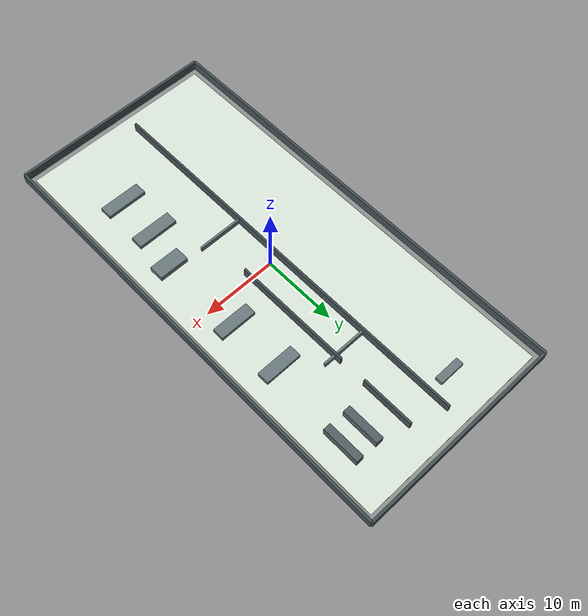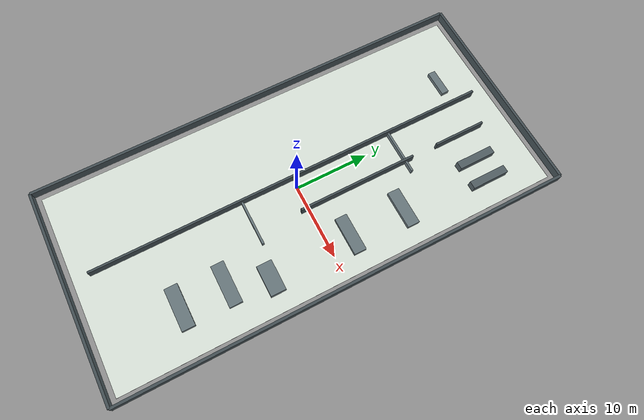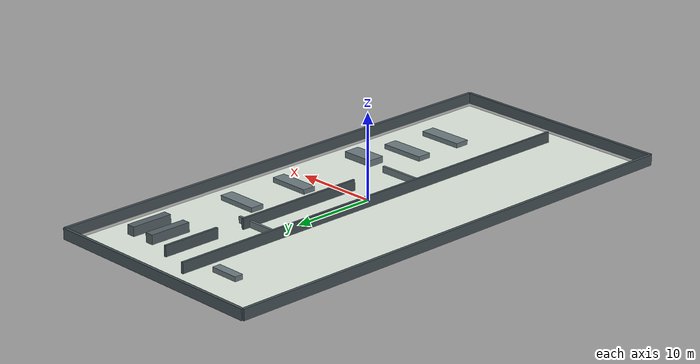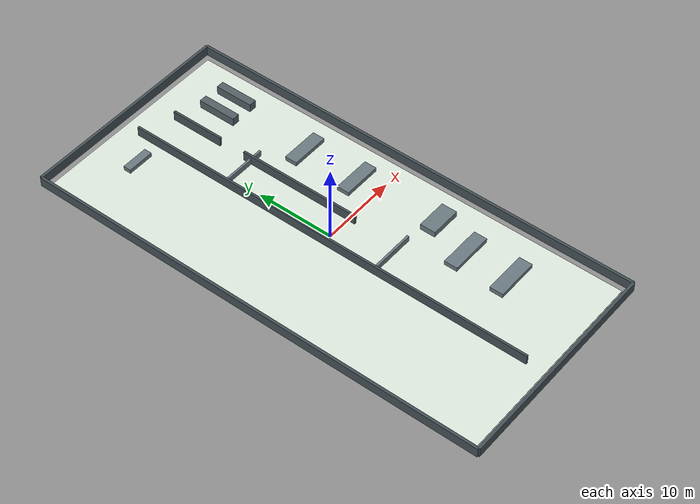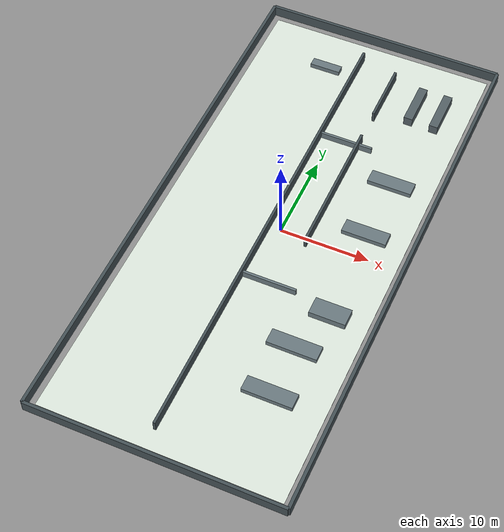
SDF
<?xml version="1.0" ?>
<sdf version="1.6">
  <world name="research_lab">
    <gravity>0 0 -9.8</gravity>
    <scene>
      <ambient>0.65 0.65 0.65 1</ambient>
      <background>0.78 0.84 0.88 1</background>
    </scene>
    <include>
      <uri>model://sun</uri>
    </include>
    <model name="research_lab_floor">
      <static>true</static>
      <pose>0.000 0.000 -0.025 0 0 0</pose>
      <link name="floor_link">
        <collision name="floor_collision">
          <geometry>
            <box><size>26.400 58.400 0.050</size></box>
          </geometry>
        </collision>
        <visual name="floor_visual">
          <geometry>
            <box><size>26.400 58.400 0.050</size></box>
          </geometry>
          <material><ambient>0.88 0.92 0.88 1</ambient><diffuse>0.88 0.92 0.88 1</diffuse></material>
        </visual>
      </link>
    </model>
    <model name="outer_north">
      <static>true</static>
      <pose>0.000 30.000 0.625 0 0 0</pose>
      <link name="outer_north_link">
        <collision name="outer_north_collision">
          <geometry>
            <box><size>28.000 0.350 1.250</size></box>
          </geometry>
        </collision>
        <visual name="outer_north_visual">
          <geometry>
            <box><size>28.000 0.350 1.250</size></box>
          </geometry>
          <material><ambient>0.27 0.32 0.34 1</ambient><diffuse>0.27 0.32 0.34 1</diffuse></material>
        </visual>
      </link>
    </model>
    <model name="outer_south">
      <static>true</static>
      <pose>0.000 -30.000 0.625 0 0 0</pose>
      <link name="outer_south_link">
        <collision name="outer_south_collision">
          <geometry>
            <box><size>28.000 0.350 1.250</size></box>
          </geometry>
        </collision>
        <visual name="outer_south_visual">
          <geometry>
            <box><size>28.000 0.350 1.250</size></box>
          </geometry>
          <material><ambient>0.27 0.32 0.34 1</ambient><diffuse>0.27 0.32 0.34 1</diffuse></material>
        </visual>
      </link>
    </model>
    <model name="outer_west">
      <static>true</static>
      <pose>-14.000 0.000 0.625 0 0 0</pose>
      <link name="outer_west_link">
        <collision name="outer_west_collision">
          <geometry>
            <box><size>0.350 60.000 1.250</size></box>
          </geometry>
        </collision>
        <visual name="outer_west_visual">
          <geometry>
            <box><size>0.350 60.000 1.250</size></box>
          </geometry>
          <material><ambient>0.27 0.32 0.34 1</ambient><diffuse>0.27 0.32 0.34 1</diffuse></material>
        </visual>
      </link>
    </model>
    <model name="outer_east">
      <static>true</static>
      <pose>14.000 0.000 0.625 0 0 0</pose>
      <link name="outer_east_link">
        <collision name="outer_east_collision">
          <geometry>
            <box><size>0.350 60.000 1.250</size></box>
          </geometry>
        </collision>
        <visual name="outer_east_visual">
          <geometry>
            <box><size>0.350 60.000 1.250</size></box>
          </geometry>
          <material><ambient>0.27 0.32 0.34 1</ambient><diffuse>0.27 0.32 0.34 1</diffuse></material>
        </visual>
      </link>
    </model>
    <model name="lab_spine_wall">
      <static>true</static>
      <pose>-1.300 0.000 0.625 0 0 0</pose>
      <link name="lab_spine_wall_link">
        <collision name="lab_spine_wall_collision">
          <geometry>
            <box><size>0.280 54.000 1.250</size></box>
          </geometry>
        </collision>
        <visual name="lab_spine_wall_visual">
          <geometry>
            <box><size>0.280 54.000 1.250</size></box>
          </geometry>
          <material><ambient>0.27 0.32 0.34 1</ambient><diffuse>0.27 0.32 0.34 1</diffuse></material>
        </visual>
      </link>
    </model>
    <model name="lab_door_block_1">
      <static>true</static>
      <pose>1.800 -7.000 0.375 0 0 0</pose>
      <link name="lab_door_block_1_link">
        <collision name="lab_door_block_1_collision">
          <geometry>
            <box><size>6.000 0.280 0.750</size></box>
          </geometry>
        </collision>
        <visual name="lab_door_block_1_visual">
          <geometry>
            <box><size>6.000 0.280 0.750</size></box>
          </geometry>
          <material><ambient>0.42 0.48 0.50 1</ambient><diffuse>0.42 0.48 0.50 1</diffuse></material>
        </visual>
      </link>
    </model>
    <model name="lab_door_block_2">
      <static>true</static>
      <pose>1.800 14.000 0.375 0 0 0</pose>
      <link name="lab_door_block_2_link">
        <collision name="lab_door_block_2_collision">
          <geometry>
            <box><size>6.000 0.280 0.750</size></box>
          </geometry>
        </collision>
        <visual name="lab_door_block_2_visual">
          <geometry>
            <box><size>6.000 0.280 0.750</size></box>
          </geometry>
          <material><ambient>0.42 0.48 0.50 1</ambient><diffuse>0.42 0.48 0.50 1</diffuse></material>
        </visual>
      </link>
    </model>
    <model name="lab_chem_wall">
      <static>true</static>
      <pose>3.200 7.000 0.625 0 0 0</pose>
      <link name="lab_chem_wall_link">
        <collision name="lab_chem_wall_collision">
          <geometry>
            <box><size>0.280 16.000 1.250</size></box>
          </geometry>
        </collision>
        <visual name="lab_chem_wall_visual">
          <geometry>
            <box><size>0.280 16.000 1.250</size></box>
          </geometry>
          <material><ambient>0.27 0.32 0.34 1</ambient><diffuse>0.27 0.32 0.34 1</diffuse></material>
        </visual>
      </link>
    </model>
    <model name="lab_storage_wall">
      <static>true</static>
      <pose>3.200 22.000 0.625 0 0 0</pose>
      <link name="lab_storage_wall_link">
        <collision name="lab_storage_wall_collision">
          <geometry>
            <box><size>0.280 7.000 1.250</size></box>
          </geometry>
        </collision>
        <visual name="lab_storage_wall_visual">
          <geometry>
            <box><size>0.280 7.000 1.250</size></box>
          </geometry>
          <material><ambient>0.27 0.32 0.34 1</ambient><diffuse>0.27 0.32 0.34 1</diffuse></material>
        </visual>
      </link>
    </model>
    <model name="lab_bench_1">
      <static>true</static>
      <pose>7.200 -19.000 0.275 0 0 0</pose>
      <link name="lab_bench_1_link">
        <collision name="lab_bench_1_collision">
          <geometry>
            <box><size>5.500 1.700 0.550</size></box>
          </geometry>
        </collision>
        <visual name="lab_bench_1_visual">
          <geometry>
            <box><size>5.500 1.700 0.550</size></box>
          </geometry>
          <material><ambient>0.42 0.48 0.50 1</ambient><diffuse>0.42 0.48 0.50 1</diffuse></material>
        </visual>
      </link>
    </model>
    <model name="lab_bench_2">
      <static>true</static>
      <pose>7.200 -13.000 0.275 0 0 0</pose>
      <link name="lab_bench_2_link">
        <collision name="lab_bench_2_collision">
          <geometry>
            <box><size>5.500 1.700 0.550</size></box>
          </geometry>
        </collision>
        <visual name="lab_bench_2_visual">
          <geometry>
            <box><size>5.500 1.700 0.550</size></box>
          </geometry>
          <material><ambient>0.42 0.48 0.50 1</ambient><diffuse>0.42 0.48 0.50 1</diffuse></material>
        </visual>
      </link>
    </model>
    <model name="lab_bench_3">
      <static>true</static>
      <pose>8.500 3.000 0.275 0 0 0</pose>
      <link name="lab_bench_3_link">
        <collision name="lab_bench_3_collision">
          <geometry>
            <box><size>5.000 1.600 0.550</size></box>
          </geometry>
        </collision>
        <visual name="lab_bench_3_visual">
          <geometry>
            <box><size>5.000 1.600 0.550</size></box>
          </geometry>
          <material><ambient>0.42 0.48 0.50 1</ambient><diffuse>0.42 0.48 0.50 1</diffuse></material>
        </visual>
      </link>
    </model>
    <model name="lab_bench_4">
      <static>true</static>
      <pose>8.500 10.500 0.275 0 0 0</pose>
      <link name="lab_bench_4_link">
        <collision name="lab_bench_4_collision">
          <geometry>
            <box><size>5.000 1.600 0.550</size></box>
          </geometry>
        </collision>
        <visual name="lab_bench_4_visual">
          <geometry>
            <box><size>5.000 1.600 0.550</size></box>
          </geometry>
          <material><ambient>0.42 0.48 0.50 1</ambient><diffuse>0.42 0.48 0.50 1</diffuse></material>
        </visual>
      </link>
    </model>
    <model name="lab_robot_cage">
      <static>true</static>
      <pose>9.000 -8.000 0.375 0 0 0</pose>
      <link name="lab_robot_cage_link">
        <collision name="lab_robot_cage_collision">
          <geometry>
            <box><size>4.000 2.000 0.750</size></box>
          </geometry>
        </collision>
        <visual name="lab_robot_cage_visual">
          <geometry>
            <box><size>4.000 2.000 0.750</size></box>
          </geometry>
          <material><ambient>0.42 0.48 0.50 1</ambient><diffuse>0.42 0.48 0.50 1</diffuse></material>
        </visual>
      </link>
    </model>
    <model name="lab_storage_shelf_a">
      <static>true</static>
      <pose>7.000 22.000 0.550 0 0 0</pose>
      <link name="lab_storage_shelf_a_link">
        <collision name="lab_storage_shelf_a_collision">
          <geometry>
            <box><size>1.000 5.000 1.100</size></box>
          </geometry>
        </collision>
        <visual name="lab_storage_shelf_a_visual">
          <geometry>
            <box><size>1.000 5.000 1.100</size></box>
          </geometry>
          <material><ambient>0.33 0.38 0.40 1</ambient><diffuse>0.33 0.38 0.40 1</diffuse></material>
        </visual>
      </link>
    </model>
    <model name="lab_storage_shelf_b">
      <static>true</static>
      <pose>10.000 22.000 0.550 0 0 0</pose>
      <link name="lab_storage_shelf_b_link">
        <collision name="lab_storage_shelf_b_collision">
          <geometry>
            <box><size>1.000 5.000 1.100</size></box>
          </geometry>
        </collision>
        <visual name="lab_storage_shelf_b_visual">
          <geometry>
            <box><size>1.000 5.000 1.100</size></box>
          </geometry>
          <material><ambient>0.33 0.38 0.40 1</ambient><diffuse>0.33 0.38 0.40 1</diffuse></material>
        </visual>
      </link>
    </model>
    <model name="lab_airlock_counter">
      <static>true</static>
      <pose>-4.800 24.000 0.275 0 0 0</pose>
      <link name="lab_airlock_counter_link">
        <collision name="lab_airlock_counter_collision">
          <geometry>
            <box><size>3.500 1.000 0.550</size></box>
          </geometry>
        </collision>
        <visual name="lab_airlock_counter_visual">
          <geometry>
            <box><size>3.500 1.000 0.550</size></box>
          </geometry>
          <material><ambient>0.42 0.48 0.50 1</ambient><diffuse>0.42 0.48 0.50 1</diffuse></material>
        </visual>
      </link>
    </model>
  </world>
</sdf>
